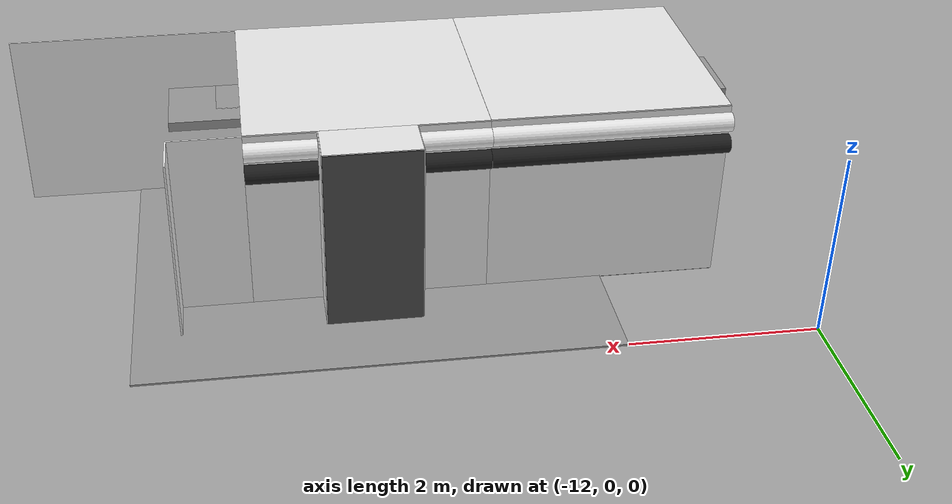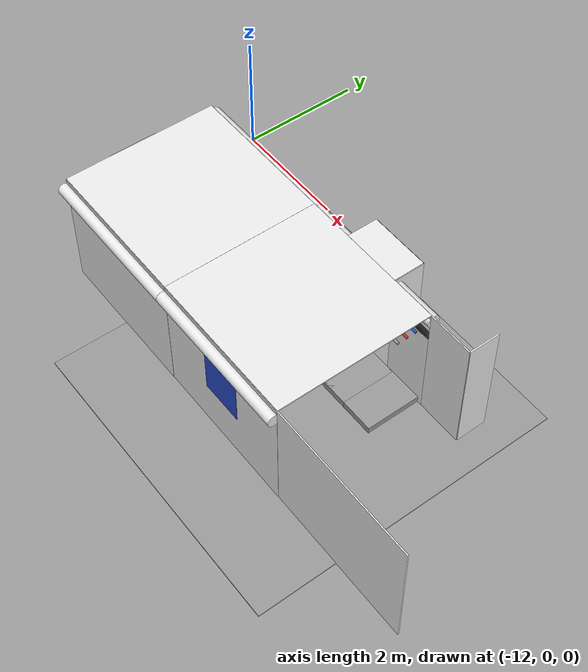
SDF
<sdf version="1.6">
 <world name="default">
  <model name="wall_left_-2_-1_0_1">
   <static>1</static>
   <pose>-5.0 -3.75 1.0 0.0 0.0 3.14</pose>
   <link name="link">
    <collision name="collision"><geometry><box><size>2.5 0.02 2.0</size></box></geometry></collision>
    <visual name="visual">
     <material>
      <script><name>Gazebo/White</name><uri>file://media/materials/scripts/gazebo.material</uri></script>
     </material>
     <geometry><box><size>2.5 0.02 2.0</size></box></geometry>
    </visual>
   </link>
  </model>
  <model name="ceiling_1_-2_-1_2_1">
   <pose>-6.0 -2.5 1.7 0.0 0.0 1.57</pose>
   <link name="link_1">
    <visual name="visual">
     <geometry><box><size>0.8 1 0.1</size></box></geometry>
     <material>
      <script><uri>file://media/materials/scripts/gazebo.material</uri><name>Gazebo/Grey</name></script>
     </material>
    </visual>
    <collision name="collision"><geometry><box><size>0.8 1 0.1</size></box></geometry></collision>
   </link>
   <static>1</static>
  </model>
  <model name="wall_right_front_left_-2_-1_0_1">
   <static>1</static>
   <pose>-5.875 -1.25 1.0 0.0 0.0 3.14</pose>
   <link name="link">
    <collision name="collision"><geometry><box><size>0.75 0.02 2.0</size></box></geometry></collision>
    <visual name="visual">
     <material>
      <script><name>Gazebo/White</name><uri>file://media/materials/scripts/gazebo.material</uri></script>
     </material>
     <geometry><box><size>0.75 0.02 2.0</size></box></geometry>
    </visual>
   </link>
  </model>
  <model name="wall_right_inside_left_-2_-1_0_1">
   <static>1</static>
   <pose>-5.5 -1.0 1.0 0.0 0.0 1.57</pose>
   <link name="link">
    <collision name="collision"><geometry><box><size>0.5 0.02 2</size></box></geometry></collision>
    <visual name="visual">
     <material>
      <script><name>Gazebo/White</name><uri>file://media/materials/scripts/gazebo.material</uri></script>
     </material>
     <geometry><box><size>0.5 0.02 2</size></box></geometry>
    </visual>
   </link>
  </model>
  <model name="wall_left_-3_-1_0_1">
   <static>1</static>
   <pose>-7.5 -3.75 1.0 0.0 0.0 3.14</pose>
   <link name="link">
    <collision name="collision"><geometry><box><size>2.5 0.02 2.0</size></box></geometry></collision>
    <visual name="visual">
     <material>
      <script><name>Gazebo/White</name><uri>file://media/materials/scripts/gazebo.material</uri></script>
     </material>
     <geometry><box><size>2.5 0.02 2.0</size></box></geometry>
    </visual>
   </link>
  </model>
  <model name="wall_top_-3_-1_0_1">
   <static>1</static>
   <pose>-7.5 -2.5 2.0 1.57 0.0 1.57</pose>
   <link name="link">
    <collision name="collision"><geometry><box><size>2.5 0.02 2.5</size></box></geometry></collision>
    <visual name="visual">
     <material>
      <script><name>Gazebo/White</name><uri>file://media/materials/scripts/gazebo.material</uri></script>
     </material>
     <geometry><box><size>2.5 0.02 2.5</size></box></geometry>
    </visual>
   </link>
  </model>
  <model name="ceiling_1_-3_-1_0_1">
   <pose>-7.5 -2.5 1.7 0.0 0.0 1.57</pose>
   <link name="link_1">
    <visual name="visual">
     <geometry><box><size>0.8 1 0.1</size></box></geometry>
     <material>
      <script><uri>file://media/materials/scripts/gazebo.material</uri><name>Gazebo/Grey</name></script>
     </material>
    </visual>
    <collision name="collision"><geometry><box><size>0.8 1 0.1</size></box></geometry></collision>
   </link>
   <static>1</static>
  </model>
  <model name="ceiling_1_-3_-1_1_1">
   <pose>-6.5 -2.5 1.7 0.0 0.0 1.57</pose>
   <link name="link_1">
    <visual name="visual">
     <geometry><box><size>0.8 1 0.1</size></box></geometry>
     <material>
      <script><uri>file://media/materials/scripts/gazebo.material</uri><name>Gazebo/Grey</name></script>
     </material>
    </visual>
    <collision name="collision"><geometry><box><size>0.8 1 0.1</size></box></geometry></collision>
   </link>
   <static>1</static>
  </model>
  <model name="ceiling_1_-3_-1_2_1">
   <pose>-8.5 -2.5 1.7 0.0 0.0 1.57</pose>
   <link name="link_1">
    <visual name="visual">
     <geometry><box><size>0.8 1 0.1</size></box></geometry>
     <material>
      <script><uri>file://media/materials/scripts/gazebo.material</uri><name>Gazebo/Grey</name></script>
     </material>
    </visual>
    <collision name="collision"><geometry><box><size>0.8 1 0.1</size></box></geometry></collision>
   </link>
   <static>1</static>
  </model>
  <model name="white_pipe_left_-3_-1_0_1">
   <static>1</static>
   <pose>-7.5 -2.5 1.84 0.0 0.0 1.57</pose>
   <link name="link_0">
    <visual name="visual">
     <pose>-1.3 0 0 1.57 0 0</pose>
     <geometry><cylinder><radius>0.1</radius><length>2.5</length></cylinder></geometry>
     <material>
      <script><uri>file://media/materials/scripts/gazebo.material</uri><name>Gazebo/White</name></script>
     </material>
    </visual>
    <collision name="collision">
     <pose>-1.3 0 0 1.57 0 0</pose>
     <geometry><cylinder><radius>0.1</radius><length>2.5</length></cylinder></geometry>
    </collision>
   </link>
  </model>
  <model name="white_pipe_right_-3_-1_0_1">
   <static>1</static>
   <pose>-7.5 -2.5 1.84 0.0 0.0 1.57</pose>
   <link name="link_0">
    <visual name="visual">
     <pose>1.3 0 0 1.57 0 0</pose>
     <geometry><cylinder><radius>0.1</radius><length>2.5</length></cylinder></geometry>
     <material>
      <script><uri>file://media/materials/scripts/gazebo.material</uri><name>Gazebo/White</name></script>
     </material>
    </visual>
    <collision name="collision">
     <pose>1.3 0 0 1.57 0 0</pose>
     <geometry><cylinder><radius>0.1</radius><length>2.5</length></cylinder></geometry>
    </collision>
   </link>
  </model>
  <model name="black_pipe_right_-3_-1_0_1">
   <static>1</static>
   <pose>-7.5 -2.5 1.84 0.0 0.0 1.57</pose>
   <link name="link_0">
    <visual name="visual">
     <pose>1.3 0 -0.25 1.57 0 0</pose>
     <geometry><cylinder><radius>0.1</radius><length>2.5</length></cylinder></geometry>
     <material>
      <script><uri>file://media/materials/scripts/gazebo.material</uri><name>Gazebo/Black</name></script>
     </material>
    </visual>
    <collision name="collision">
     <pose>1.3 0 -0.25 1.57 0 0</pose>
     <geometry><cylinder><radius>0.1</radius><length>2.5</length></cylinder></geometry>
    </collision>
   </link>
  </model>
  <model name="grey_pipe_right_-3_-1_0_1">
   <static>1</static>
   <pose>-7.5 -2.5 1.84 0.0 0.0 1.57</pose>
   <link name="link_0">
    <visual name="visual">
     <pose>0.7 0 0 1.57 0 0</pose>
     <geometry><cylinder><radius>0.02</radius><length>2.5</length></cylinder></geometry>
     <material>
      <script><uri>file://media/materials/scripts/gazebo.material</uri><name>Gazebo/Grey</name></script>
     </material>
    </visual>
    <collision name="collision">
     <pose>0.7 0 0 1.57 0 0</pose>
     <geometry><cylinder><radius>0.02</radius><length>2.5</length></cylinder></geometry>
    </collision>
   </link>
  </model>
  <model name="red_pipe_right_-3_-1_0_1">
   <static>1</static>
   <pose>-7.5 -2.5 1.84 0.0 0.0 1.57</pose>
   <link name="link_0">
    <visual name="visual">
     <pose>0.85 0 0 1.57 0 0</pose>
     <geometry><cylinder><radius>0.02</radius><length>2.5</length></cylinder></geometry>
     <material>
      <script><uri>file://media/materials/scripts/gazebo.material</uri><name>Gazebo/Red</name></script>
     </material>
    </visual>
    <collision name="collision">
     <pose>0.85 0 0 1.57 0 0</pose>
     <geometry><cylinder><radius>0.02</radius><length>2.5</length></cylinder></geometry>
    </collision>
   </link>
  </model>
  <model name="blue_pipe_right_-3_-1_0_1">
   <static>1</static>
   <pose>-7.5 -2.5 1.84 0.0 0.0 1.57</pose>
   <link name="link_0">
    <visual name="visual">
     <pose>1 0 0 1.57 0 0</pose>
     <geometry><cylinder><radius>0.02</radius><length>2.5</length></cylinder></geometry>
     <material>
      <script><uri>file://media/materials/scripts/gazebo.material</uri><name>Gazebo/Blue</name></script>
     </material>
    </visual>
    <collision name="collision">
     <pose>1 0 0 1.57 0 0</pose>
     <geometry><cylinder><radius>0.02</radius><length>2.5</length></cylinder></geometry>
    </collision>
   </link>
  </model>
  <model name="panel_-3_-1_0_1">
   <static>1</static>
   <pose>-7.5 -3.75 1.3 0.0 0.0 1.57</pose>
   <link name="link">
    <collision name="collision"><geometry><box><size>0.04 0.7 1</size></box></geometry></collision>
    <visual name="visual">
     <material>
      <script><name>Gazebo/Blue</name><uri>file://media/materials/scripts/gazebo.material</uri></script>
     </material>
     <geometry><box><size>0.04 0.7 1</size></box></geometry>
    </visual>
   </link>
  </model>
  <model name="wall_right_front_left_-3_-1_0_1">
   <static>1</static>
   <pose>-8.375 -1.25 1.0 0.0 0.0 3.14</pose>
   <link name="link">
    <collision name="collision"><geometry><box><size>0.75 0.02 2.0</size></box></geometry></collision>
    <visual name="visual">
     <material>
      <script><name>Gazebo/White</name><uri>file://media/materials/scripts/gazebo.material</uri></script>
     </material>
     <geometry><box><size>0.75 0.02 2.0</size></box></geometry>
    </visual>
   </link>
  </model>
  <model name="wall_right_front_right_-3_-1_0_1">
   <static>1</static>
   <pose>-6.625 -1.25 1.0 0.0 0.0 3.14</pose>
   <link name="link">
    <collision name="collision"><geometry><box><size>0.75 0.02 2.0</size></box></geometry></collision>
    <visual name="visual">
     <material>
      <script><name>Gazebo/White</name><uri>file://media/materials/scripts/gazebo.material</uri></script>
     </material>
     <geometry><box><size>0.75 0.02 2.0</size></box></geometry>
    </visual>
   </link>
  </model>
  <model name="wall_right_front_up_-3_-1_0_1">
   <static>1</static>
   <pose>-7.5 -1.25 2.0 0.0 0.0 3.14</pose>
   <link name="link">
    <collision name="collision"><geometry><box><size>1.0 0.02 0.001</size></box></geometry></collision>
    <visual name="visual">
     <material>
      <script><name>Gazebo/White</name><uri>file://media/materials/scripts/gazebo.material</uri></script>
     </material>
     <geometry><box><size>1.0 0.02 0.001</size></box></geometry>
    </visual>
   </link>
  </model>
  <model name="wall_right_inside_back_-3_-1_0_1">
   <static>1</static>
   <pose>-7.5 -0.75 1.0 0.0 0.0 3.14</pose>
   <link name="link">
    <collision name="collision"><geometry><box><size>1 0.02 2</size></box></geometry></collision>
    <visual name="visual">
     <material>
      <script><name>Gazebo/DarkGrey</name><uri>file://media/materials/scripts/gazebo.material</uri></script>
     </material>
     <geometry><box><size>1 0.02 2</size></box></geometry>
    </visual>
   </link>
  </model>
  <model name="wall_right_inside_left_-3_-1_0_1">
   <static>1</static>
   <pose>-8.0 -1.0 1.0 0.0 0.0 1.57</pose>
   <link name="link">
    <collision name="collision"><geometry><box><size>0.5 0.02 2</size></box></geometry></collision>
    <visual name="visual">
     <material>
      <script><name>Gazebo/White</name><uri>file://media/materials/scripts/gazebo.material</uri></script>
     </material>
     <geometry><box><size>0.5 0.02 2</size></box></geometry>
    </visual>
   </link>
  </model>
  <model name="wall_right_inside_right_-3_-1_0_1">
   <static>1</static>
   <pose>-7.0 -1.0 1.0 0.0 0.0 1.57</pose>
   <link name="link">
    <collision name="collision"><geometry><box><size>0.5 0.02 2</size></box></geometry></collision>
    <visual name="visual">
     <material>
      <script><name>Gazebo/White</name><uri>file://media/materials/scripts/gazebo.material</uri></script>
     </material>
     <geometry><box><size>0.5 0.02 2</size></box></geometry>
    </visual>
   </link>
  </model>
  <model name="wall_right_inside_top_-3_-1_0_1">
   <static>1</static>
   <pose>-7.5 -1.0 2.0 1.57 0.0 3.14</pose>
   <link name="link">
    <collision name="collision"><geometry><box><size>1 0.02 0.5</size></box></geometry></collision>
    <visual name="visual">
     <material>
      <script><name>Gazebo/White</name><uri>file://media/materials/scripts/gazebo.material</uri></script>
     </material>
     <geometry><box><size>1 0.02 0.5</size></box></geometry>
    </visual>
   </link>
  </model>
  <model name="wall_bottom_-3_-1_0_1">
   <static>1</static>
   <pose>-7.5 -2.5 0.0 0.0 0.0 1.57</pose>
   <link name="link">
    <collision name="collision"><geometry><box><size>5.0 5.0 0.02</size></box></geometry></collision>
    <visual name="visual">
     <material>
      <script><name>Gazebo/Grey</name><uri>file://media/materials/scripts/gazebo.material</uri></script>
     </material>
     <geometry><box><size>5.0 5.0 0.02</size></box></geometry>
    </visual>
   </link>
  </model>
  <model name="wall_right_-4_-1_0_4">
   <static>1</static>
   <pose>-10.0 -1.25 1.0 0.0 0.0 3.14</pose>
   <link name="link">
    <collision name="collision"><geometry><box><size>2.5 0.02 2.0</size></box></geometry></collision>
    <visual name="visual">
     <material>
      <script><name>Gazebo/White</name><uri>file://media/materials/scripts/gazebo.material</uri></script>
     </material>
     <geometry><box><size>2.5 0.02 2.0</size></box></geometry>
    </visual>
   </link>
  </model>
  <model name="wall_left_-4_-1_0_4">
   <static>1</static>
   <pose>-10.0 -3.75 1.0 0.0 0.0 3.14</pose>
   <link name="link">
    <collision name="collision"><geometry><box><size>2.5 0.02 2.0</size></box></geometry></collision>
    <visual name="visual">
     <material>
      <script><name>Gazebo/White</name><uri>file://media/materials/scripts/gazebo.material</uri></script>
     </material>
     <geometry><box><size>2.5 0.02 2.0</size></box></geometry>
    </visual>
   </link>
  </model>
  <model name="wall_top_-4_-1_0_4">
   <static>1</static>
   <pose>-10.0 -2.5 2.0 1.57 0.0 1.57</pose>
   <link name="link">
    <collision name="collision"><geometry><box><size>2.5 0.02 2.5</size></box></geometry></collision>
    <visual name="visual">
     <material>
      <script><name>Gazebo/White</name><uri>file://media/materials/scripts/gazebo.material</uri></script>
     </material>
     <geometry><box><size>2.5 0.02 2.5</size></box></geometry>
    </visual>
   </link>
  </model>
  <model name="ceiling_1_-4_-1_0_4">
   <pose>-10.0 -2.5 1.7 0.0 0.0 1.57</pose>
   <link name="link_1">
    <visual name="visual">
     <geometry><box><size>0.8 1 0.1</size></box></geometry>
     <material>
      <script><uri>file://media/materials/scripts/gazebo.material</uri><name>Gazebo/Grey</name></script>
     </material>
    </visual>
    <collision name="collision"><geometry><box><size>0.8 1 0.1</size></box></geometry></collision>
   </link>
   <static>1</static>
  </model>
  <model name="ceiling_1_-4_-1_1_4">
   <pose>-9.0 -2.5 1.7 0.0 0.0 1.57</pose>
   <link name="link_1">
    <visual name="visual">
     <geometry><box><size>0.8 1 0.1</size></box></geometry>
     <material>
      <script><uri>file://media/materials/scripts/gazebo.material</uri><name>Gazebo/Grey</name></script>
     </material>
    </visual>
    <collision name="collision"><geometry><box><size>0.8 1 0.1</size></box></geometry></collision>
   </link>
   <static>1</static>
  </model>
  <model name="ceiling_1_-4_-1_2_4">
   <pose>-11.0 -2.5 1.7 0.0 0.0 1.57</pose>
   <link name="link_1">
    <visual name="visual">
     <geometry><box><size>0.8 1 0.1</size></box></geometry>
     <material>
      <script><uri>file://media/materials/scripts/gazebo.material</uri><name>Gazebo/Grey</name></script>
     </material>
    </visual>
    <collision name="collision"><geometry><box><size>0.8 1 0.1</size></box></geometry></collision>
   </link>
   <static>1</static>
  </model>
  <model name="white_pipe_left_-4_-1_0_4">
   <static>1</static>
   <pose>-10.0 -2.5 1.84 0.0 0.0 1.57</pose>
   <link name="link_0">
    <visual name="visual">
     <pose>-1.3 0 0 1.57 0 0</pose>
     <geometry><cylinder><radius>0.1</radius><length>2.5</length></cylinder></geometry>
     <material>
      <script><uri>file://media/materials/scripts/gazebo.material</uri><name>Gazebo/White</name></script>
     </material>
    </visual>
    <collision name="collision">
     <pose>-1.3 0 0 1.57 0 0</pose>
     <geometry><cylinder><radius>0.1</radius><length>2.5</length></cylinder></geometry>
    </collision>
   </link>
  </model>
  <model name="white_pipe_right_-4_-1_0_4">
   <static>1</static>
   <pose>-10.0 -2.5 1.84 0.0 0.0 1.57</pose>
   <link name="link_0">
    <visual name="visual">
     <pose>1.3 0 0 1.57 0 0</pose>
     <geometry><cylinder><radius>0.1</radius><length>2.5</length></cylinder></geometry>
     <material>
      <script><uri>file://media/materials/scripts/gazebo.material</uri><name>Gazebo/White</name></script>
     </material>
    </visual>
    <collision name="collision">
     <pose>1.3 0 0 1.57 0 0</pose>
     <geometry><cylinder><radius>0.1</radius><length>2.5</length></cylinder></geometry>
    </collision>
   </link>
  </model>
  <model name="black_pipe_right_-4_-1_0_4">
   <static>1</static>
   <pose>-10.0 -2.5 1.84 0.0 0.0 1.57</pose>
   <link name="link_0">
    <visual name="visual">
     <pose>1.3 0 -0.25 1.57 0 0</pose>
     <geometry><cylinder><radius>0.1</radius><length>2.5</length></cylinder></geometry>
     <material>
      <script><uri>file://media/materials/scripts/gazebo.material</uri><name>Gazebo/Black</name></script>
     </material>
    </visual>
    <collision name="collision">
     <pose>1.3 0 -0.25 1.57 0 0</pose>
     <geometry><cylinder><radius>0.1</radius><length>2.5</length></cylinder></geometry>
    </collision>
   </link>
  </model>
  <model name="grey_pipe_right_-4_-1_0_4">
   <static>1</static>
   <pose>-10.0 -2.5 1.84 0.0 0.0 1.57</pose>
   <link name="link_0">
    <visual name="visual">
     <pose>0.7 0 0 1.57 0 0</pose>
     <geometry><cylinder><radius>0.02</radius><length>2.5</length></cylinder></geometry>
     <material>
      <script><uri>file://media/materials/scripts/gazebo.material</uri><name>Gazebo/Grey</name></script>
     </material>
    </visual>
    <collision name="collision">
     <pose>0.7 0 0 1.57 0 0</pose>
     <geometry><cylinder><radius>0.02</radius><length>2.5</length></cylinder></geometry>
    </collision>
   </link>
  </model>
  <model name="red_pipe_right_-4_-1_0_4">
   <static>1</static>
   <pose>-10.0 -2.5 1.84 0.0 0.0 1.57</pose>
   <link name="link_0">
    <visual name="visual">
     <pose>0.85 0 0 1.57 0 0</pose>
     <geometry><cylinder><radius>0.02</radius><length>2.5</length></cylinder></geometry>
     <material>
      <script><uri>file://media/materials/scripts/gazebo.material</uri><name>Gazebo/Red</name></script>
     </material>
    </visual>
    <collision name="collision">
     <pose>0.85 0 0 1.57 0 0</pose>
     <geometry><cylinder><radius>0.02</radius><length>2.5</length></cylinder></geometry>
    </collision>
   </link>
  </model>
  <model name="blue_pipe_right_-4_-1_0_4">
   <static>1</static>
   <pose>-10.0 -2.5 1.84 0.0 0.0 1.57</pose>
   <link name="link_0">
    <visual name="visual">
     <pose>1 0 0 1.57 0 0</pose>
     <geometry><cylinder><radius>0.02</radius><length>2.5</length></cylinder></geometry>
     <material>
      <script><uri>file://media/materials/scripts/gazebo.material</uri><name>Gazebo/Blue</name></script>
     </material>
    </visual>
    <collision name="collision">
     <pose>1 0 0 1.57 0 0</pose>
     <geometry><cylinder><radius>0.02</radius><length>2.5</length></cylinder></geometry>
    </collision>
   </link>
  </model>
  <model name="wall_bottom_-4_-1_0_4">
   <static>1</static>
   <pose>-10.0 -2.5 0.0 0.0 0.0 1.57</pose>
   <link name="link">
    <collision name="collision"><geometry><box><size>2.5 2.5 0.02</size></box></geometry></collision>
    <visual name="visual">
     <material>
      <script><name>Gazebo/Grey</name><uri>file://media/materials/scripts/gazebo.material</uri></script>
     </material>
     <geometry><box><size>2.5 2.5 0.02</size></box></geometry>
    </visual>
   </link>
  </model>
 </world>
</sdf>
